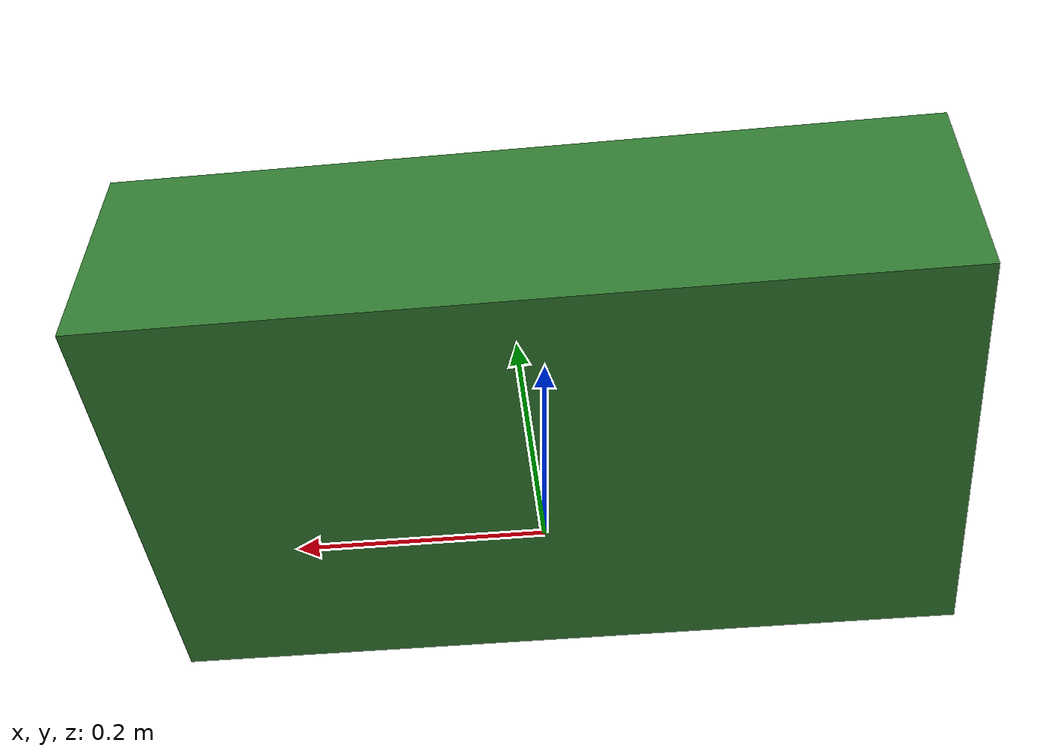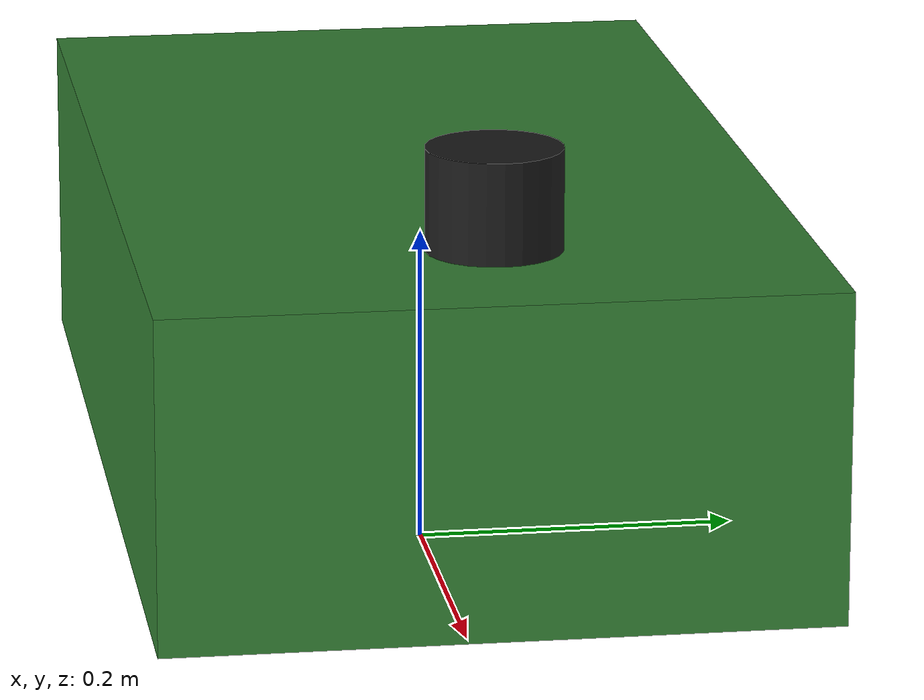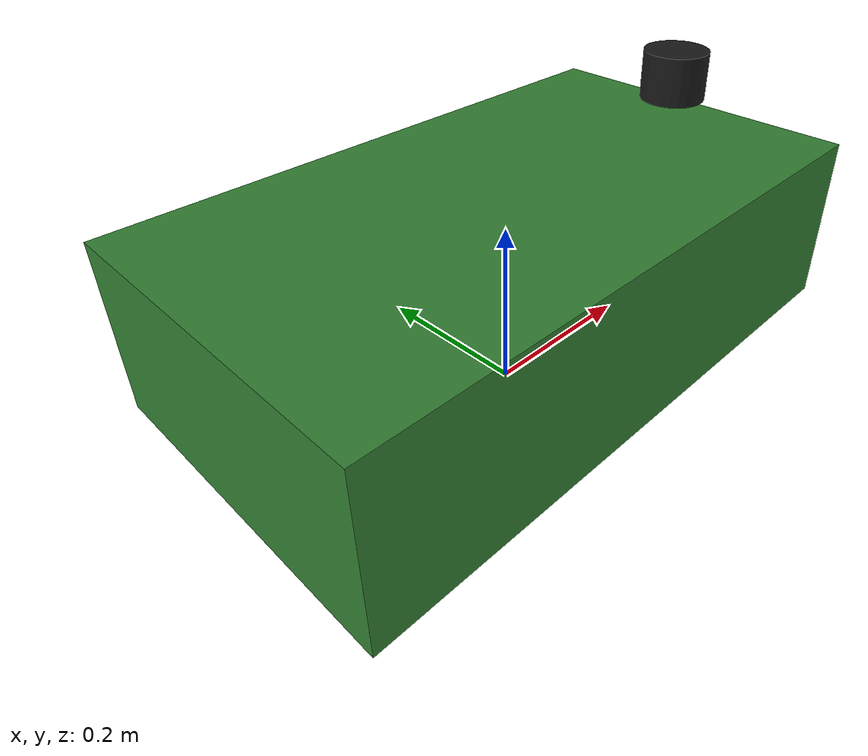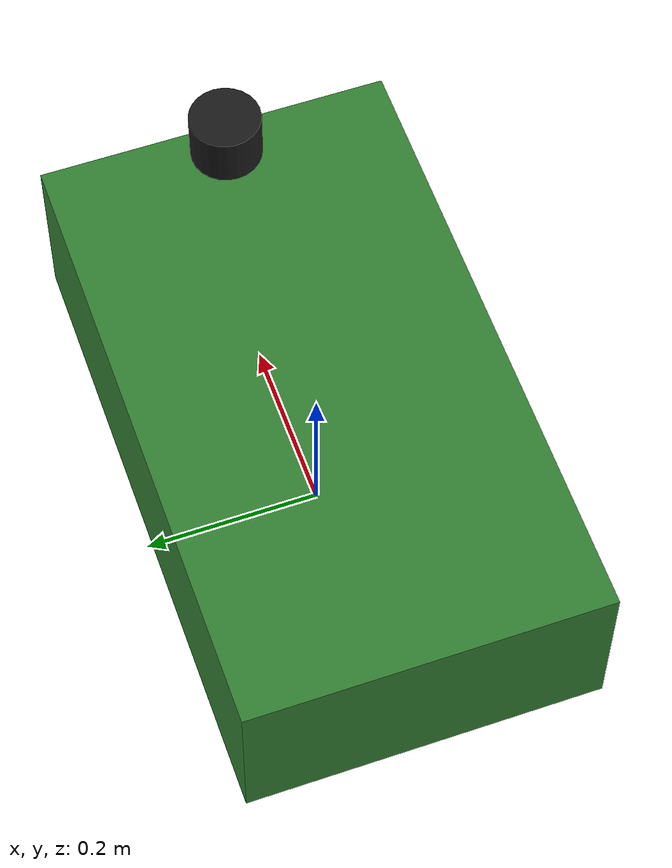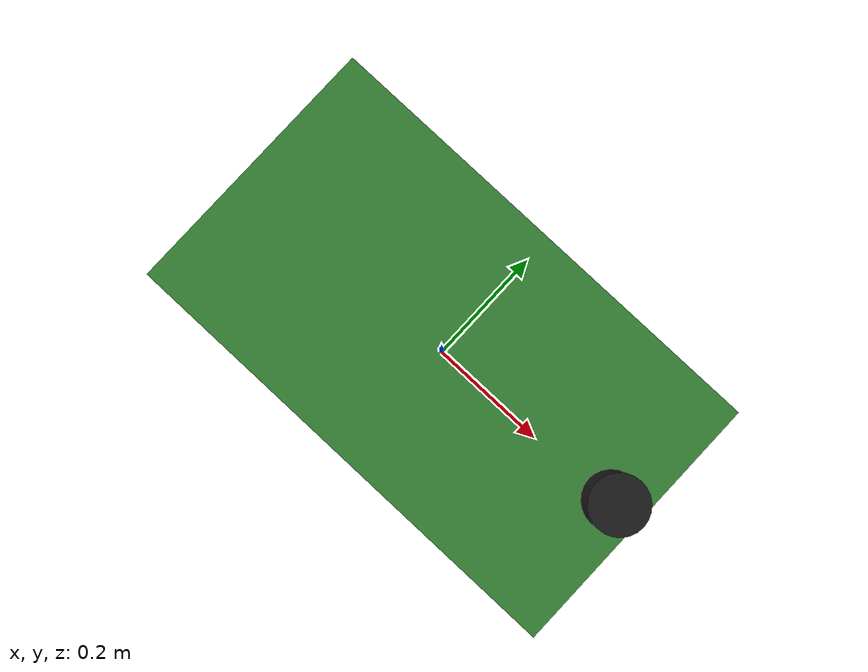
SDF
<?xml version="1.0"?>
<!-- Test model: plain SDF (no XACRO, no URDF conversion step).
     Used to verify the SDF-direct import path and preflight checker.
     Includes a plugin element to test plugin stripping in preview. -->
<sdf version="1.9">
  <model name="minimal_sdf_robot">

    <link name="chassis">
      <pose>0 0 0.15 0 0 0</pose>

      <visual name="chassis_visual">
        <geometry>
          <box>
            <size>0.7 0.4 0.2</size>
          </box>
        </geometry>
        <material>
          <ambient>0.2 0.5 0.2 1</ambient>
          <diffuse>0.2 0.5 0.2 1</diffuse>
          <specular>0.1 0.1 0.1 1</specular>
        </material>
      </visual>

      <collision name="chassis_col">
        <geometry>
          <box>
            <size>0.7 0.4 0.2</size>
          </box>
        </geometry>
      </collision>

      <inertial>
        <mass>15</mass>
        <inertia>
          <ixx>0.35</ixx><ixy>0</ixy><ixz>0</ixz>
          <iyy>0.7</iyy><iyz>0</iyz>
          <izz>0.9</izz>
        </inertia>
      </inertial>
    </link>

    <link name="lidar_link">
      <pose>0.3 0 0.3 0 0 0</pose>

      <visual name="lidar_visual">
        <geometry>
          <cylinder>
            <radius>0.04</radius>
            <length>0.06</length>
          </cylinder>
        </geometry>
        <material>
          <ambient>0.1 0.1 0.1 1</ambient>
          <diffuse>0.1 0.1 0.1 1</diffuse>
        </material>
      </visual>

      <collision name="lidar_col">
        <geometry>
          <cylinder>
            <radius>0.04</radius>
            <length>0.06</length>
          </cylinder>
        </geometry>
      </collision>

      <inertial>
        <mass>0.2</mass>
        <inertia>
          <ixx>0.0001</ixx><ixy>0</ixy><ixz>0</ixz>
          <iyy>0.0001</iyy><iyz>0</iyz>
          <izz>0.0001</izz>
        </inertia>
      </inertial>

      <sensor name="lidar" type="lidar">
        <pose>0 0 0.05 0 0 0</pose>
        <lidar>
          <scan>
            <horizontal>
              <samples>360</samples>
              <resolution>1</resolution>
              <min_angle>-3.14159</min_angle>
              <max_angle>3.14159</max_angle>
            </horizontal>
          </scan>
          <range>
            <min>0.1</min>
            <max>30.0</max>
          </range>
        </lidar>
        <always_on>1</always_on>
        <update_rate>10</update_rate>
      </sensor>
    </link>

    <joint name="chassis_to_lidar" type="fixed">
      <parent>chassis</parent>
      <child>lidar_link</child>
    </joint>

    <!-- Intentional plugin — stripped by PreviewController::preparePreviewSdf().
         Verified in preflight report under "Plugins stripped for preview". -->
    <plugin filename="gz-sim-diff-drive-system"
            name="gz::sim::systems::DiffDrive">
      <left_joint>left_wheel_joint</left_joint>
      <right_joint>right_wheel_joint</right_joint>
      <wheel_separation>0.4</wheel_separation>
      <wheel_radius>0.1</wheel_radius>
    </plugin>

  </model>
</sdf>
